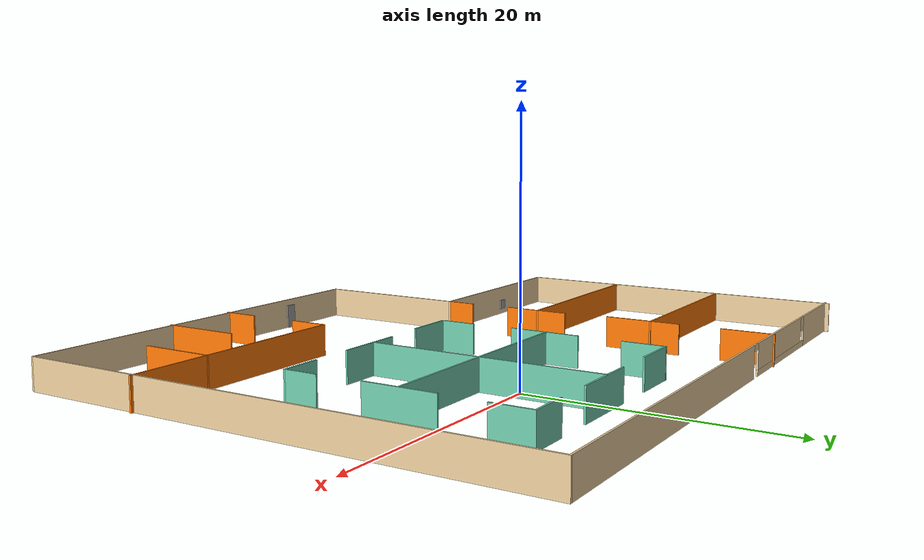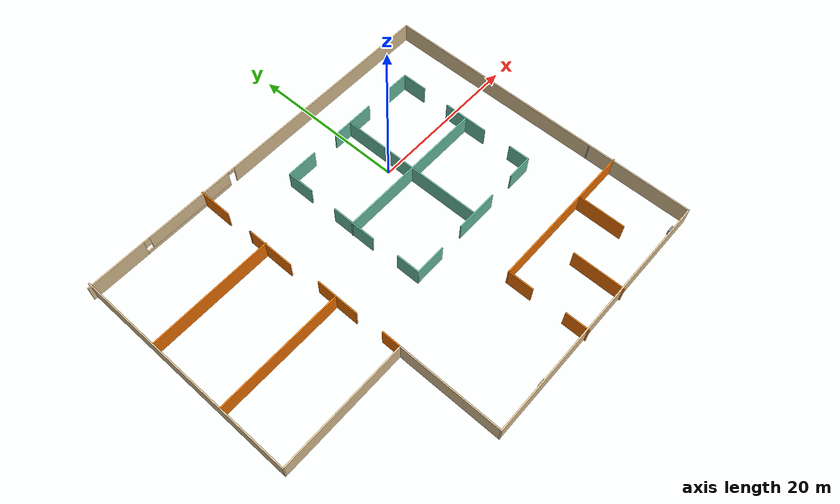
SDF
<?xml version='1.0'?>
<sdf version='1.7'>
  <model name='Building'>
    <pose>-7.83394 -8.23641 0 0 -0 0</pose>
    <link name='Door_1'>
      <collision name='Door_1_Collision'>
        <geometry>
          <box>
            <size>0.9 0.17 2</size>
          </box>
        </geometry>
        <pose>0 0 1 0 -0 0</pose>
      </collision>
      <visual name='Door_1_Visual'>
        <pose>0 0 1 0 -0 0</pose>
        <geometry>
          <box>
            <size>0.9 0.17 2</size>
          </box>
        </geometry>
        <material>
          <script>
            <uri>file://media/materials/scripts/gazebo.material</uri>
            <name>Gazebo/Grey</name>
          </script>
        </material>
      </visual>
      <pose>-1.70203 -20.6283 0 0 -0 0</pose>
    </link>
    <link name='Wall_0'>
      <pose>-0.103035 20.5912 0 0 -0 0</pose>
      <visual name='Wall_0_Visual_0'>
        <pose>-21.2789 0 1.25 0 -0 0</pose>
        <geometry>
          <box>
            <size>7.44224 0.15 2.5</size>
          </box>
        </geometry>
        <material>
          <script>
            <uri>file://media/materials/scripts/gazebo.material</uri>
            <name>Gazebo/Grey</name>
          </script>
          <ambient>0.921569 0.807843 0.615686 1</ambient>
        </material>
        <meta>
          <layer>0</layer>
        </meta>
      </visual>
      <collision name='Wall_0_Collision_0'>
        <geometry>
          <box>
            <size>7.44224 0.15 2.5</size>
          </box>
        </geometry>
        <pose>-21.2789 0 1.25 0 -0 0</pose>
      </collision>
      <visual name='Wall_0_Visual_1'>
        <pose>10.2537 0 1.25 0 -0 0</pose>
        <geometry>
          <box>
            <size>29.4926 0.15 2.5</size>
          </box>
        </geometry>
        <material>
          <script>
            <uri>file://media/materials/scripts/gazebo.material</uri>
            <name>Gazebo/Grey</name>
          </script>
          <ambient>0.921569 0.807843 0.615686 1</ambient>
        </material>
        <meta>
          <layer>0</layer>
        </meta>
      </visual>
      <collision name='Wall_0_Collision_1'>
        <geometry>
          <box>
            <size>29.4926 0.15 2.5</size>
          </box>
        </geometry>
        <pose>10.2537 0 1.25 0 -0 0</pose>
      </collision>
      <visual name='Wall_0_Visual_2'>
        <pose>-11.4752 0 0.25 0 -0 0</pose>
        <geometry>
          <box>
            <size>12.1652 0.15 0.5</size>
          </box>
        </geometry>
        <material>
          <script>
            <uri>file://media/materials/scripts/gazebo.material</uri>
            <name>Gazebo/Grey</name>
          </script>
          <ambient>0.921569 0.807843 0.615686 1</ambient>
        </material>
        <meta>
          <layer>0</layer>
        </meta>
      </visual>
      <collision name='Wall_0_Collision_2'>
        <geometry>
          <box>
            <size>12.1652 0.15 0.5</size>
          </box>
        </geometry>
        <pose>-11.4752 0 0.25 0 -0 0</pose>
      </collision>
      <visual name='Wall_0_Visual_3'>
        <pose>-11.0752 0 1.5 0 -0 0</pose>
        <geometry>
          <box>
            <size>11.3652 0.15 2</size>
          </box>
        </geometry>
        <material>
          <script>
            <uri>file://media/materials/scripts/gazebo.material</uri>
            <name>Gazebo/Grey</name>
          </script>
          <ambient>0.921569 0.807843 0.615686 1</ambient>
        </material>
        <meta>
          <layer>0</layer>
        </meta>
      </visual>
      <collision name='Wall_0_Collision_3'>
        <geometry>
          <box>
            <size>11.3652 0.15 2</size>
          </box>
        </geometry>
        <pose>-11.0752 0 1.5 0 -0 0</pose>
      </collision>
      <visual name='Wall_0_Visual_4'>
        <pose>-17.1578 0 1.9 0 -0 0</pose>
        <geometry>
          <box>
            <size>0.8 0.15 1.2</size>
          </box>
        </geometry>
        <material>
          <script>
            <uri>file://media/materials/scripts/gazebo.material</uri>
            <name>Gazebo/Grey</name>
          </script>
          <ambient>0.921569 0.807843 0.615686 1</ambient>
        </material>
        <meta>
          <layer>0</layer>
        </meta>
      </visual>
      <collision name='Wall_0_Collision_4'>
        <geometry>
          <box>
            <size>0.8 0.15 1.2</size>
          </box>
        </geometry>
        <pose>-17.1578 0 1.9 0 -0 0</pose>
      </collision>
      <visual name='Wall_0_Visual_5'>
        <pose>-4.9426 0 2.25 0 -0 0</pose>
        <geometry>
          <box>
            <size>0.9 0.15 0.5</size>
          </box>
        </geometry>
        <material>
          <script>
            <uri>file://media/materials/scripts/gazebo.material</uri>
            <name>Gazebo/Grey</name>
          </script>
          <ambient>0.921569 0.807843 0.615686 1</ambient>
        </material>
        <meta>
          <layer>0</layer>
        </meta>
      </visual>
      <collision name='Wall_0_Collision_5'>
        <geometry>
          <box>
            <size>0.9 0.15 0.5</size>
          </box>
        </geometry>
        <pose>-4.9426 0 2.25 0 -0 0</pose>
      </collision>
    </link>
    <link name='Wall_10'>
      <collision name='Wall_10_Collision'>
        <geometry>
          <box>
            <size>15.75 0.15 2.5</size>
          </box>
        </geometry>
        <pose>0 0 1.25 0 -0 0</pose>
      </collision>
      <visual name='Wall_10_Visual'>
        <pose>0 0 1.25 0 -0 0</pose>
        <geometry>
          <box>
            <size>15.75 0.15 2.5</size>
          </box>
        </geometry>
        <material>
          <script>
            <uri>file://media/materials/scripts/gazebo.material</uri>
            <name>Gazebo/Grey</name>
          </script>
          <ambient>0.996078 0.47451 0.0196078 1</ambient>
        </material>
        <meta>
          <layer>0</layer>
        </meta>
      </visual>
      <pose>-16.7887 10.7538 0 0 -0 0</pose>
    </link>
    <link name='Wall_13'>
      <collision name='Wall_13_Collision'>
        <geometry>
          <box>
            <size>5.5 0.15 2.5</size>
          </box>
        </geometry>
        <pose>0 0 1.25 0 -0 0</pose>
      </collision>
      <visual name='Wall_13_Visual'>
        <pose>0 0 1.25 0 -0 0</pose>
        <geometry>
          <box>
            <size>5.5 0.15 2.5</size>
          </box>
        </geometry>
        <material>
          <script>
            <uri>file://media/materials/scripts/gazebo.material</uri>
            <name>Gazebo/Grey</name>
          </script>
          <ambient>0.996078 0.47451 0.0196078 1</ambient>
        </material>
        <meta>
          <layer>0</layer>
        </meta>
      </visual>
      <pose>-8.53054 0.603215 0 0 -0 -1.5708</pose>
    </link>
    <link name='Wall_15'>
      <collision name='Wall_15_Collision'>
        <geometry>
          <box>
            <size>0.16 0.15 2.5</size>
          </box>
        </geometry>
        <pose>0 0 1.25 0 -0 0</pose>
      </collision>
      <visual name='Wall_15_Visual'>
        <pose>0 0 1.25 0 -0 0</pose>
        <geometry>
          <box>
            <size>0.16 0.15 2.5</size>
          </box>
        </geometry>
        <material>
          <script>
            <uri>file://media/materials/scripts/gazebo.material</uri>
            <name>Gazebo/Grey</name>
          </script>
          <ambient>1 1 1 1</ambient>
        </material>
        <meta>
          <layer>0</layer>
        </meta>
      </visual>
      <pose>-9.087 13.1037 0 0 -0 0</pose>
    </link>
    <link name='Wall_16'>
      <collision name='Wall_16_Collision'>
        <geometry>
          <box>
            <size>6.25 0.15 2.5</size>
          </box>
        </geometry>
        <pose>0 0 1.25 0 -0 0</pose>
      </collision>
      <visual name='Wall_16_Visual'>
        <pose>0 0 1.25 0 -0 0</pose>
        <geometry>
          <box>
            <size>6.25 0.15 2.5</size>
          </box>
        </geometry>
        <material>
          <script>
            <uri>file://media/materials/scripts/gazebo.material</uri>
            <name>Gazebo/Grey</name>
          </script>
          <ambient>0.996078 0.47451 0.0196078 1</ambient>
        </material>
        <meta>
          <layer>0</layer>
        </meta>
      </visual>
      <pose>-9.082 10.0537 0 0 -0 -1.5708</pose>
    </link>
    <link name='Wall_18'>
      <collision name='Wall_18_Collision'>
        <geometry>
          <box>
            <size>4.25 0.15 2.5</size>
          </box>
        </geometry>
        <pose>0 0 1.25 0 -0 0</pose>
      </collision>
      <visual name='Wall_18_Visual'>
        <pose>0 0 1.25 0 -0 0</pose>
        <geometry>
          <box>
            <size>4.25 0.15 2.5</size>
          </box>
        </geometry>
        <material>
          <script>
            <uri>file://media/materials/scripts/gazebo.material</uri>
            <name>Gazebo/Grey</name>
          </script>
          <ambient>0.996078 0.47451 0.0196078 1</ambient>
        </material>
        <meta>
          <layer>0</layer>
        </meta>
      </visual>
      <pose>-9.17515 18.6691 0 0 -0 -1.5708</pose>
    </link>
    <link name='Wall_2'>
      <collision name='Wall_2_Collision'>
        <geometry>
          <box>
            <size>41.5 0.15 2.5</size>
          </box>
        </geometry>
        <pose>0 0 1.25 0 -0 0</pose>
      </collision>
      <visual name='Wall_2_Visual'>
        <pose>0 0 1.25 0 -0 0</pose>
        <geometry>
          <box>
            <size>41.5 0.15 2.5</size>
          </box>
        </geometry>
        <material>
          <script>
            <uri>file://media/materials/scripts/gazebo.material</uri>
            <name>Gazebo/Grey</name>
          </script>
          <ambient>0.921569 0.807843 0.615686 1</ambient>
        </material>
        <meta>
          <layer>0</layer>
        </meta>
      </visual>
      <pose>24.822 -0.083771 0 0 -0 -1.5708</pose>
    </link>
    <link name='Wall_20'>
      <collision name='Wall_20_Collision'>
        <geometry>
          <box>
            <size>2.5 0.15 2.5</size>
          </box>
        </geometry>
        <pose>0 0 1.25 0 -0 0</pose>
      </collision>
      <visual name='Wall_20_Visual'>
        <pose>0 0 1.25 0 -0 0</pose>
        <geometry>
          <box>
            <size>2.5 0.15 2.5</size>
          </box>
        </geometry>
        <material>
          <script>
            <uri>file://media/materials/scripts/gazebo.material</uri>
            <name>Gazebo/Grey</name>
          </script>
          <ambient>0.996078 0.47451 0.0196078 1</ambient>
        </material>
        <meta>
          <layer>0</layer>
        </meta>
      </visual>
      <pose>-8.27803 -6.73377 0 0 -0 1.5708</pose>
    </link>
    <link name='Wall_22'>
      <collision name='Wall_22_Collision'>
        <geometry>
          <box>
            <size>3.5 0.15 2.5</size>
          </box>
        </geometry>
        <pose>0 0 1.25 0 -0 0</pose>
      </collision>
      <visual name='Wall_22_Visual'>
        <pose>0 0 1.25 0 -0 0</pose>
        <geometry>
          <box>
            <size>3.5 0.15 2.5</size>
          </box>
        </geometry>
        <material>
          <script>
            <uri>file://media/materials/scripts/gazebo.material</uri>
            <name>Gazebo/Grey</name>
          </script>
          <ambient>0.435294 0.796078 0.67451 1</ambient>
        </material>
        <meta>
          <layer>0</layer>
        </meta>
      </visual>
      <pose>-0.929122 13.6032 0 0 -0 1.5708</pose>
    </link>
    <link name='Wall_23'>
      <collision name='Wall_23_Collision'>
        <geometry>
          <box>
            <size>4 0.15 2.5</size>
          </box>
        </geometry>
        <pose>0 0 1.25 0 -0 0</pose>
      </collision>
      <visual name='Wall_23_Visual'>
        <pose>0 0 1.25 0 -0 0</pose>
        <geometry>
          <box>
            <size>4 0.15 2.5</size>
          </box>
        </geometry>
        <material>
          <script>
            <uri>file://media/materials/scripts/gazebo.material</uri>
            <name>Gazebo/Grey</name>
          </script>
          <ambient>0.435294 0.796078 0.67451 1</ambient>
        </material>
        <meta>
          <layer>0</layer>
        </meta>
      </visual>
      <pose>0.995878 15.2782 0 0 -0 0</pose>
    </link>
    <link name='Wall_25'>
      <collision name='Wall_25_Collision'>
        <geometry>
          <box>
            <size>5.75 0.15 2.5</size>
          </box>
        </geometry>
        <pose>0 0 1.25 0 -0 0</pose>
      </collision>
      <visual name='Wall_25_Visual'>
        <pose>0 0 1.25 0 -0 0</pose>
        <geometry>
          <box>
            <size>5.75 0.15 2.5</size>
          </box>
        </geometry>
        <material>
          <script>
            <uri>file://media/materials/scripts/gazebo.material</uri>
            <name>Gazebo/Grey</name>
          </script>
          <ambient>0.435294 0.796078 0.67451 1</ambient>
        </material>
        <meta>
          <layer>0</layer>
        </meta>
      </visual>
      <pose>-0.929122 5.44857 0 0 -0 -1.5708</pose>
    </link>
    <link name='Wall_27'>
      <collision name='Wall_27_Collision'>
        <geometry>
          <box>
            <size>3 0.15 2.5</size>
          </box>
        </geometry>
        <pose>0 0 1.25 0 -0 0</pose>
      </collision>
      <visual name='Wall_27_Visual'>
        <pose>0 0 1.25 0 -0 0</pose>
        <geometry>
          <box>
            <size>3 0.15 2.5</size>
          </box>
        </geometry>
        <material>
          <script>
            <uri>file://media/materials/scripts/gazebo.material</uri>
            <name>Gazebo/Grey</name>
          </script>
          <ambient>0.435294 0.796078 0.67451 1</ambient>
        </material>
        <meta>
          <layer>0</layer>
        </meta>
      </visual>
      <pose>-0.712674 -2.26723 0 0 -0 -1.5708</pose>
    </link>
    <link name='Wall_28'>
      <collision name='Wall_28_Collision'>
        <geometry>
          <box>
            <size>4 0.15 2.5</size>
          </box>
        </geometry>
        <pose>0 0 1.25 0 -0 0</pose>
      </collision>
      <visual name='Wall_28_Visual'>
        <pose>0 0 1.25 0 -0 0</pose>
        <geometry>
          <box>
            <size>4 0.15 2.5</size>
          </box>
        </geometry>
        <material>
          <script>
            <uri>file://media/materials/scripts/gazebo.material</uri>
            <name>Gazebo/Grey</name>
          </script>
          <ambient>0.435294 0.796078 0.67451 1</ambient>
        </material>
        <meta>
          <layer>0</layer>
        </meta>
      </visual>
      <pose>1.21233 -3.69223 0 0 -0 0</pose>
    </link>
    <link name='Wall_3'>
      <collision name='Wall_3_Collision'>
        <geometry>
          <box>
            <size>33.25 0.15 2.5</size>
          </box>
        </geometry>
        <pose>0 0 1.25 0 -0 0</pose>
      </collision>
      <visual name='Wall_3_Visual'>
        <pose>0 0 1.25 0 -0 0</pose>
        <geometry>
          <box>
            <size>33.25 0.15 2.5</size>
          </box>
        </geometry>
        <material>
          <script>
            <uri>file://media/materials/scripts/gazebo.material</uri>
            <name>Gazebo/Grey</name>
          </script>
          <ambient>0.921569 0.807843 0.615686 1</ambient>
        </material>
        <meta>
          <layer>0</layer>
        </meta>
      </visual>
      <pose>8.27196 -20.7588 0 0 -0 3.14159</pose>
    </link>
    <link name='Wall_30'>
      <collision name='Wall_30_Collision'>
        <geometry>
          <box>
            <size>5.75 0.15 2.5</size>
          </box>
        </geometry>
        <pose>0 0 1.25 0 -0 0</pose>
      </collision>
      <visual name='Wall_30_Visual'>
        <pose>0 0 1.25 0 -0 0</pose>
        <geometry>
          <box>
            <size>5.75 0.15 2.5</size>
          </box>
        </geometry>
        <material>
          <script>
            <uri>file://media/materials/scripts/gazebo.material</uri>
            <name>Gazebo/Grey</name>
          </script>
          <ambient>0.435294 0.796078 0.67451 1</ambient>
        </material>
        <meta>
          <layer>0</layer>
        </meta>
      </visual>
      <pose>9.28203 15.2537 0 0 -0 0</pose>
    </link>
    <link name='Wall_32'>
      <collision name='Wall_32_Collision'>
        <geometry>
          <box>
            <size>3.25 0.15 2.5</size>
          </box>
        </geometry>
        <pose>0 0 1.25 0 -0 0</pose>
      </collision>
      <visual name='Wall_32_Visual'>
        <pose>0 0 1.25 0 -0 0</pose>
        <geometry>
          <box>
            <size>3.25 0.15 2.5</size>
          </box>
        </geometry>
        <material>
          <script>
            <uri>file://media/materials/scripts/gazebo.material</uri>
            <name>Gazebo/Grey</name>
          </script>
          <ambient>0.435294 0.796078 0.67451 1</ambient>
        </material>
        <meta>
          <layer>0</layer>
        </meta>
      </visual>
      <pose>16.998 15.2537 0 0 -0 0</pose>
    </link>
    <link name='Wall_33'>
      <collision name='Wall_33_Collision'>
        <geometry>
          <box>
            <size>3.25 0.15 2.5</size>
          </box>
        </geometry>
        <pose>0 0 1.25 0 -0 0</pose>
      </collision>
      <visual name='Wall_33_Visual'>
        <pose>0 0 1.25 0 -0 0</pose>
        <geometry>
          <box>
            <size>3.25 0.15 2.5</size>
          </box>
        </geometry>
        <material>
          <script>
            <uri>file://media/materials/scripts/gazebo.material</uri>
            <name>Gazebo/Grey</name>
          </script>
          <ambient>0.435294 0.796078 0.67451 1</ambient>
        </material>
        <meta>
          <layer>0</layer>
        </meta>
      </visual>
      <pose>18.548 13.7037 0 0 -0 -1.5708</pose>
    </link>
    <link name='Wall_35'>
      <collision name='Wall_35_Collision'>
        <geometry>
          <box>
            <size>5.75 0.15 2.5</size>
          </box>
        </geometry>
        <pose>0 0 1.25 0 -0 0</pose>
      </collision>
      <visual name='Wall_35_Visual'>
        <pose>0 0 1.25 0 -0 0</pose>
        <geometry>
          <box>
            <size>5.75 0.15 2.5</size>
          </box>
        </geometry>
        <material>
          <script>
            <uri>file://media/materials/scripts/gazebo.material</uri>
            <name>Gazebo/Grey</name>
          </script>
          <ambient>0.435294 0.796078 0.67451 1</ambient>
        </material>
        <meta>
          <layer>0</layer>
        </meta>
      </visual>
      <pose>18.4367 5.62249 0 0 -0 -1.5708</pose>
    </link>
    <link name='Wall_37'>
      <collision name='Wall_37_Collision'>
        <geometry>
          <box>
            <size>2.75 0.15 2.5</size>
          </box>
        </geometry>
        <pose>0 0 1.25 0 -0 0</pose>
      </collision>
      <visual name='Wall_37_Visual'>
        <pose>0 0 1.25 0 -0 0</pose>
        <geometry>
          <box>
            <size>2.75 0.15 2.5</size>
          </box>
        </geometry>
        <material>
          <script>
            <uri>file://media/materials/scripts/gazebo.material</uri>
            <name>Gazebo/Grey</name>
          </script>
          <ambient>0.435294 0.796078 0.67451 1</ambient>
        </material>
        <meta>
          <layer>0</layer>
        </meta>
      </visual>
      <pose>18.579 -2.12816 0 0 -0 -1.5708</pose>
    </link>
    <link name='Wall_38'>
      <collision name='Wall_38_Collision'>
        <geometry>
          <box>
            <size>3.25 0.15 2.5</size>
          </box>
        </geometry>
        <pose>0 0 1.25 0 -0 0</pose>
      </collision>
      <visual name='Wall_38_Visual'>
        <pose>0 0 1.25 0 -0 0</pose>
        <geometry>
          <box>
            <size>3.25 0.15 2.5</size>
          </box>
        </geometry>
        <material>
          <script>
            <uri>file://media/materials/scripts/gazebo.material</uri>
            <name>Gazebo/Grey</name>
          </script>
          <ambient>0.435294 0.796078 0.67451 1</ambient>
        </material>
        <meta>
          <layer>0</layer>
        </meta>
      </visual>
      <pose>17.029 -3.42816 0 0 -0 3.14159</pose>
    </link>
    <link name='Wall_4'>
      <collision name='Wall_4_Collision'>
        <geometry>
          <box>
            <size>13 0.15 2.5</size>
          </box>
        </geometry>
        <pose>0 0 1.25 0 -0 0</pose>
      </collision>
      <visual name='Wall_4_Visual'>
        <pose>0 0 1.25 0 -0 0</pose>
        <geometry>
          <box>
            <size>13 0.15 2.5</size>
          </box>
        </geometry>
        <material>
          <script>
            <uri>file://media/materials/scripts/gazebo.material</uri>
            <name>Gazebo/Grey</name>
          </script>
          <ambient>0.921569 0.807843 0.615686 1</ambient>
        </material>
        <meta>
          <layer>0</layer>
        </meta>
      </visual>
      <pose>-8.27803 -14.3338 0 0 -0 1.5708</pose>
    </link>
    <link name='Wall_40'>
      <collision name='Wall_40_Collision'>
        <geometry>
          <box>
            <size>5.5 0.15 2.5</size>
          </box>
        </geometry>
        <pose>0 0 1.25 0 -0 0</pose>
      </collision>
      <visual name='Wall_40_Visual'>
        <pose>0 0 1.25 0 -0 0</pose>
        <geometry>
          <box>
            <size>5.5 0.15 2.5</size>
          </box>
        </geometry>
        <material>
          <script>
            <uri>file://media/materials/scripts/gazebo.material</uri>
            <name>Gazebo/Grey</name>
          </script>
          <ambient>0.435294 0.796078 0.67451 1</ambient>
        </material>
        <meta>
          <layer>0</layer>
        </meta>
      </visual>
      <pose>9.29406 -3.47554 0 0 -0 0</pose>
    </link>
    <link name='Wall_42'>
      <collision name='Wall_42_Collision'>
        <geometry>
          <box>
            <size>18.75 0.15 2.5</size>
          </box>
        </geometry>
        <pose>0 0 1.25 0 -0 0</pose>
      </collision>
      <visual name='Wall_42_Visual'>
        <pose>0 0 1.25 0 -0 0</pose>
        <geometry>
          <box>
            <size>18.75 0.15 2.5</size>
          </box>
        </geometry>
        <material>
          <script>
            <uri>file://media/materials/scripts/gazebo.material</uri>
            <name>Gazebo/Grey</name>
          </script>
          <ambient>0.435294 0.796078 0.67451 1</ambient>
        </material>
        <meta>
          <layer>0</layer>
        </meta>
      </visual>
      <pose>8.87892 5.94906 0 0 -0 -1.5708</pose>
    </link>
    <link name='Wall_44'>
      <collision name='Wall_44_Collision'>
        <geometry>
          <box>
            <size>19.5 0.15 2.5</size>
          </box>
        </geometry>
        <pose>0 0 1.25 0 -0 0</pose>
      </collision>
      <visual name='Wall_44_Visual'>
        <pose>0 0 1.25 0 -0 0</pose>
        <geometry>
          <box>
            <size>19.5 0.15 2.5</size>
          </box>
        </geometry>
        <material>
          <script>
            <uri>file://media/materials/scripts/gazebo.material</uri>
            <name>Gazebo/Grey</name>
          </script>
          <ambient>0.435294 0.796078 0.67451 1</ambient>
        </material>
        <meta>
          <layer>0</layer>
        </meta>
      </visual>
      <pose>8.65356 5.56393 0 0 -0 0</pose>
    </link>
    <link name='Wall_46'>
      <collision name='Wall_46_Collision'>
        <geometry>
          <box>
            <size>0.16 0.15 2.5</size>
          </box>
        </geometry>
        <pose>0 0 1.25 0 -0 0</pose>
      </collision>
      <visual name='Wall_46_Visual'>
        <pose>0 0 1.25 0 -0 0</pose>
        <geometry>
          <box>
            <size>0.16 0.15 2.5</size>
          </box>
        </geometry>
        <material>
          <script>
            <uri>file://media/materials/scripts/gazebo.material</uri>
            <name>Gazebo/Grey</name>
          </script>
          <ambient>1 1 1 1</ambient>
        </material>
        <meta>
          <layer>0</layer>
        </meta>
      </visual>
      <pose>24.8166 -7.52149 0 0 -0 0</pose>
    </link>
    <link name='Wall_48'>
      <collision name='Wall_48_Collision'>
        <geometry>
          <box>
            <size>19.5 0.15 2.5</size>
          </box>
        </geometry>
        <pose>0 0 1.25 0 -0 0</pose>
      </collision>
      <visual name='Wall_48_Visual'>
        <pose>0 0 1.25 0 -0 0</pose>
        <geometry>
          <box>
            <size>19.5 0.15 2.5</size>
          </box>
        </geometry>
        <material>
          <script>
            <uri>file://media/materials/scripts/gazebo.material</uri>
            <name>Gazebo/Grey</name>
          </script>
          <ambient>0.996078 0.47451 0.0196078 1</ambient>
        </material>
        <meta>
          <layer>0</layer>
        </meta>
      </visual>
      <pose>15.353 -10.7682 0 0 -0 3.14159</pose>
    </link>
    <link name='Wall_49'>
      <collision name='Wall_49_Collision'>
        <geometry>
          <box>
            <size>3.25 0.15 2.5</size>
          </box>
        </geometry>
        <pose>0 0 1.25 0 -0 0</pose>
      </collision>
      <visual name='Wall_49_Visual'>
        <pose>0 0 1.25 0 -0 0</pose>
        <geometry>
          <box>
            <size>3.25 0.15 2.5</size>
          </box>
        </geometry>
        <material>
          <script>
            <uri>file://media/materials/scripts/gazebo.material</uri>
            <name>Gazebo/Grey</name>
          </script>
          <ambient>0.996078 0.47451 0.0196078 1</ambient>
        </material>
        <meta>
          <layer>0</layer>
        </meta>
      </visual>
      <pose>5.67804 -12.3182 0 0 -0 -1.5708</pose>
    </link>
    <link name='Wall_5'>
      <collision name='Wall_5_Collision'>
        <geometry>
          <box>
            <size>16.5 0.15 2.5</size>
          </box>
        </geometry>
        <pose>0 0 1.25 0 -0 0</pose>
      </collision>
      <visual name='Wall_5_Visual'>
        <pose>0 0 1.25 0 -0 0</pose>
        <geometry>
          <box>
            <size>16.5 0.15 2.5</size>
          </box>
        </geometry>
        <material>
          <script>
            <uri>file://media/materials/scripts/gazebo.material</uri>
            <name>Gazebo/Grey</name>
          </script>
          <ambient>0.921569 0.807843 0.615686 1</ambient>
        </material>
        <meta>
          <layer>0</layer>
        </meta>
      </visual>
      <pose>-16.453 -7.90877 0 0 -0 3.14159</pose>
    </link>
    <link name='Wall_51'>
      <collision name='Wall_51_Collision'>
        <geometry>
          <box>
            <size>3 0.15 2.5</size>
          </box>
        </geometry>
        <pose>0 0 1.25 0 -0 0</pose>
      </collision>
      <visual name='Wall_51_Visual'>
        <pose>0 0 1.25 0 -0 0</pose>
        <geometry>
          <box>
            <size>3 0.15 2.5</size>
          </box>
        </geometry>
        <material>
          <script>
            <uri>file://media/materials/scripts/gazebo.material</uri>
            <name>Gazebo/Grey</name>
          </script>
          <ambient>0.996078 0.47451 0.0196078 1</ambient>
        </material>
        <meta>
          <layer>0</layer>
        </meta>
      </visual>
      <pose>5.76421 -19.5162 0 0 -0 1.5708</pose>
    </link>
    <link name='Wall_55'>
      <collision name='Wall_55_Collision'>
        <geometry>
          <box>
            <size>6.5 0.15 2.5</size>
          </box>
        </geometry>
        <pose>0 0 1.25 0 -0 0</pose>
      </collision>
      <visual name='Wall_55_Visual'>
        <pose>0 0 1.25 0 -0 0</pose>
        <geometry>
          <box>
            <size>6.5 0.15 2.5</size>
          </box>
        </geometry>
        <material>
          <script>
            <uri>file://media/materials/scripts/gazebo.material</uri>
            <name>Gazebo/Grey</name>
          </script>
          <ambient>0.996078 0.47451 0.0196078 1</ambient>
        </material>
        <meta>
          <layer>0</layer>
        </meta>
      </visual>
      <pose>12.0412 -17.7662 0 0 -0 1.5708</pose>
    </link>
    <link name='Wall_57'>
      <collision name='Wall_57_Collision'>
        <geometry>
          <box>
            <size>6 0.15 2.5</size>
          </box>
        </geometry>
        <pose>0 0 1.25 0 -0 0</pose>
      </collision>
      <visual name='Wall_57_Visual'>
        <pose>0 0 1.25 0 -0 0</pose>
        <geometry>
          <box>
            <size>6 0.15 2.5</size>
          </box>
        </geometry>
        <material>
          <script>
            <uri>file://media/materials/scripts/gazebo.material</uri>
            <name>Gazebo/Grey</name>
          </script>
          <ambient>0.996078 0.47451 0.0196078 1</ambient>
        </material>
        <meta>
          <layer>0</layer>
        </meta>
      </visual>
      <pose>18.3182 -13.6932 0 0 -0 -1.5708</pose>
    </link>
    <link name='Wall_6'>
      <collision name='Wall_6_Collision'>
        <geometry>
          <box>
            <size>29 0.15 2.5</size>
          </box>
        </geometry>
        <pose>0 0 1.25 0 -0 0</pose>
      </collision>
      <visual name='Wall_6_Visual'>
        <pose>0 0 1.25 0 -0 0</pose>
        <geometry>
          <box>
            <size>29 0.15 2.5</size>
          </box>
        </geometry>
        <material>
          <script>
            <uri>file://media/materials/scripts/gazebo.material</uri>
            <name>Gazebo/Grey</name>
          </script>
          <ambient>0.921569 0.807843 0.615686 1</ambient>
        </material>
        <meta>
          <layer>0</layer>
        </meta>
      </visual>
      <pose>-24.628 6.51623 0 0 -0 1.5708</pose>
    </link>
    <link name='Wall_8'>
      <collision name='Wall_8_Collision'>
        <geometry>
          <box>
            <size>16.25 0.15 2.5</size>
          </box>
        </geometry>
        <pose>0 0 1.25 0 -0 0</pose>
      </collision>
      <visual name='Wall_8_Visual'>
        <pose>0 0 1.25 0 -0 0</pose>
        <geometry>
          <box>
            <size>16.25 0.15 2.5</size>
          </box>
        </geometry>
        <material>
          <script>
            <uri>file://media/materials/scripts/gazebo.material</uri>
            <name>Gazebo/Grey</name>
          </script>
          <ambient>0.996078 0.47451 0.0196078 1</ambient>
        </material>
        <meta>
          <layer>0</layer>
        </meta>
      </visual>
      <pose>-16.568 0.767891 0 0 -0 0</pose>
    </link>
    <link name='Window_0'>
      <collision name='Window_0_Collision'>
        <geometry>
          <box>
            <size>0.8 0.17 0.8</size>
          </box>
        </geometry>
        <pose>0 0 0.4 0 -0 0</pose>
      </collision>
      <visual name='Window_0_Visual'>
        <pose>0 0 0.4 0 -0 0</pose>
        <geometry>
          <box>
            <size>0.8 0.17 0.8</size>
          </box>
        </geometry>
        <material>
          <script>
            <uri>file://media/materials/scripts/gazebo.material</uri>
            <name>Gazebo/Grey</name>
          </script>
        </material>
      </visual>
      <pose>-17.2608 -7.77215 0.5 0 -0 0</pose>
    </link>
    <link name='Window_2'>
      <collision name='Window_2_Collision'>
        <geometry>
          <box>
            <size>0.8 0.17 0.8</size>
          </box>
        </geometry>
        <pose>0 0 0.4 0 -0 0</pose>
      </collision>
      <visual name='Window_2_Visual'>
        <pose>0 0 0.4 0 -0 0</pose>
        <geometry>
          <box>
            <size>0.8 0.17 0.8</size>
          </box>
        </geometry>
        <material>
          <script>
            <uri>file://media/materials/scripts/gazebo.material</uri>
            <name>Gazebo/Grey</name>
          </script>
        </material>
      </visual>
      <pose>22.3236 -20.4119 0.5 0 -0 0</pose>
    </link>
    <static>1</static>
  </model>
</sdf>
